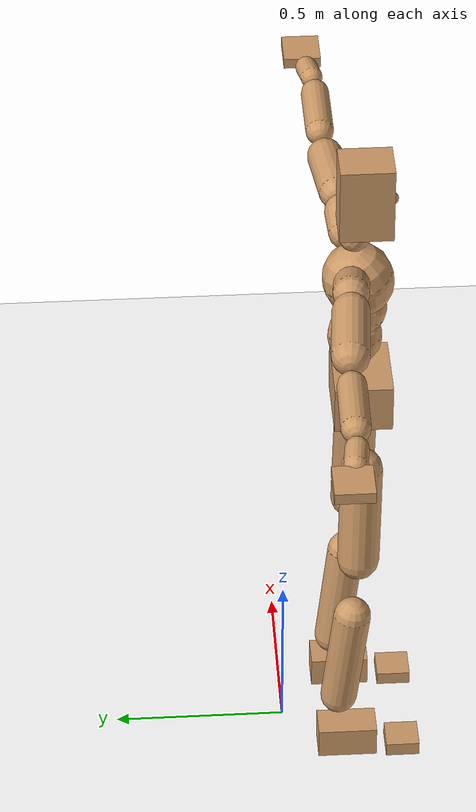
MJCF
<mujoco model="humanoid">
  <option integrator="implicitfast" />

  <visual>
    <global offwidth="1280" offheight="960" />
    <headlight active="1" ambient="0.34 0.34 0.34" diffuse="0.5 0.5 0.5" />
  </visual>

  <default>
    <joint damping="2" stiffness="2" armature="0.01" limited="true" solimplimit="0 .99 .01" />
    <geom condim="1" friction="0.7 0.005 0.0001" solimp=".99 .99 .003" solref="0.015 1" margin="0.001" rgba="0.8 0.6 .4 1" />
    <default class="smplcontact">
      <geom condim="3" friction="1. 0.005 0.0001" solref="0.015 1" solimp="0.98 0.98 0.001" priority="1" />
    </default>
    <default class="stiff_medium">
      <joint stiffness="10" />
    </default>
    <default class="stiff_medium_higher">
      <joint stiffness="50" />
    </default>
    <default class="stiff_high">
      <joint stiffness="100" />
    </default>
  </default>

  <asset>
    <texture type="skybox" builtin="gradient" rgb1="0.99 0.99 0.99" rgb2="0.608 0.828 0.892" width="100" />
    <texture builtin="flat" height="1278" mark="cross" markrgb="1 1 1" name="texgeom" random="0.01" rgb1="0.8 0.6 0.4" rgb2="0.8 0.6 0.4" type="cube" width="127" />
    <texture name="texplane" type="2d" builtin="checker" markrgb="1 1 1" rgb1="0.756 0.772 0.76" rgb2="0.6 0.6 0.6" width="100" height="100" />
    <material name="MatPlane" reflectance="0.5" texture="texplane" texrepeat="1 1" texuniform="true" />
    <material name="geom" texture="texgeom" texuniform="true" />
  </asset>

  <worldbody>
    <light name="tracking_light" pos="0 0 7" dir="0 0 -1" directional="true" cutoff="100" exponent="1" diffuse="1 1 1" specular="0.1 0.1 0.1" mode="trackcom" />
    <camera name="back" pos="0 3 2.4" xyaxes="-1 0 0 0 -1 2" mode="trackcom" />
    <camera name="side" pos="-3 0 2.4" xyaxes="0 -1 0 1 0 2" mode="trackcom" />
    <camera name="front_side" pos="-2.8 -2.8 0.8" xyaxes="0.5 -0.5 0 0.1 0.1 1" mode="trackcom" />
    <geom condim="3" name="floor" pos="0 0 0" rgba="1 1 1 1" size="100 100 .2" type="plane" material="MatPlane" />
    <body name="Pelvis" pos="-0.0018 -0.2233 1.27986" euler="90 0 0">
      <site name="Pelvis" size="0.01" />
      <freejoint name="Pelvis" />
      <geom type="box" pos="-0.0000 -0.0121 -0.0055" size="0.1069 0.0722 0.083" quat="1.0000 0.0000 0.0000 0.0000" density="3165.830099" name="Pelvis" />
      <body name="L_Hip" pos="0.0955625 -0.125675 -0.00935">
        <joint name="L_Hip_x" type="hinge" pos="0 0 0" axis="1 0 0" stiffness="17.19824030612245" range="-160.0 22.92" class="stiff_medium" damping="29.629361290924336" armature="0.022687051049198843"/>
        <joint name="L_Hip_y" type="hinge" pos="0 0 0" axis="0 1 0" stiffness="17.095561632653062" range="-70.0 70.0" class="stiff_medium" damping="16.759236135916318" armature="0.01642952725945715"/>
        <joint name="L_Hip_z" type="hinge" pos="0 0 0" axis="0 0 1" stiffness="17.10435142857143" range="-28.65 90.0" class="stiff_medium" damping="19.702841471961815" armature="0.022696093663089653"/>
        <geom type="capsule" density="2040.816327" fromto="0.0094875 -0.103125 -0.0012375 0.037675 -0.412775 -0.00495" size="0.0615" name="L_Hip" />
        <body name="L_Knee" pos="0.0471625 -0.5159 -0.0061875">
          <joint name="L_Knee_x" type="hinge" pos="0 0 0" axis="1 0 0" range="-5.16 171.89" damping="15.062760794577" armature="0.021343797365827893" stiffness="3.321907163265306"/>
          <joint name="L_Knee_y" type="hinge" pos="0 0 0" axis="0 1 0" range="-4.58 6.88" damping="12.945965232871583" armature="0.015441578364462126" stiffness="3.3917763265306125"/>
          <joint name="L_Knee_z" type="hinge" pos="0 0 0" axis="0 0 1" range="-6.88 4.58" damping="15.006918060065548" armature="0.02138423024615955" stiffness="3.2910874489795923"/>
          <geom type="capsule" density="1234.567901" fromto="-0.0037125 -0.10945 -0.0119625 -0.0149875 -0.4378 -0.048125" size="0.0541" name="L_Knee" />
          <body name="L_Ankle" pos="-0.0187 -0.54725 -0.0600875">
            <joint name="L_Ankle_x" type="hinge" pos="0 0 0" axis="1 0 0" range="-45.84 45.84" class="stiff_medium" damping="8.85984943243265" armature="0.015857944517404896" stiffness="13.750018673469388"/>
            <joint name="L_Ankle_y" type="hinge" pos="0 0 0" axis="0 1 0" range="-74.48 22.92" class="stiff_medium" damping="4.399379468505369" armature="0.015640018623433526" stiffness="13.750011836734695"/>
            <joint name="L_Ankle_z" type="hinge" pos="0 0 0" axis="0 0 1" range="-4.58 4.58" class="stiff_medium" damping="8.387836414114469" armature="0.014213292870695891" stiffness="13.75"/>
            <geom type="box" pos="0.0320375 -0.0328625 0.033275" size="0.0483 0.0464 0.085" quat="1.0000 0.0000 0.0000 0.0000" density="449.071558" name="L_Ankle" class="smplcontact" />
            <body name="L_Toe" pos="0.0363 -0.076725 0.164038">
              <joint name="L_Toe_x" type="hinge" pos="0 0 0" axis="1 0 0" range="-91.67 22.92" armature="0.013386048586154133" damping="2.7133607799894164" stiffness="2.75"/>
              <joint name="L_Toe_y" type="hinge" pos="0 0 0" axis="0 1 0" range="-4.58 4.58" armature="0.012385744586589299" damping="2.610011402776646" stiffness="2.75"/>
              <joint name="L_Toe_z" type="hinge" pos="0 0 0" axis="0 0 1" range="-4.58 4.58" armature="0.010363183740585029" damping="2.387415141386551" stiffness="2.75"/>
              <geom type="box" pos="-0.004125 0.0075625 0.0341" size="0.0478 0.02 0.0496" quat="1.0000 0.0000 0.0000 0.0000" density="423.206892" name="L_Toe" class="smplcontact" />
            </body>
          </body>
        </body>
      </body>
      <body name="R_Hip" pos="-0.0930875 -0.124437 -0.0059125">
        <joint name="R_Hip_x" type="hinge" pos="0 0 0" axis="1 0 0" stiffness="17.19824030612245" range="-160.0 22.92" class="stiff_medium" damping="29.629361290924336" armature="0.022687051049198843"/>
        <joint name="R_Hip_y" type="hinge" pos="0 0 0" axis="0 1 0" stiffness="17.095561632653062" range="-70.0 70.0" class="stiff_medium" damping="16.759236135916318" armature="0.01642952725945715"/>
        <joint name="R_Hip_z" type="hinge" pos="0 0 0" axis="0 0 1" stiffness="17.10435142857143" range="-90.0 28.65" class="stiff_medium" damping="19.702841471961815" armature="0.022696093663089653"/>
        <geom type="capsule" density="2040.816327" fromto="-0.0105875 -0.105188 -0.002475 -0.042075 -0.420887 -0.0097625" size="0.0606" name="R_Hip" />
        <body name="R_Knee" pos="-0.0526625 -0.526075 -0.0122375">
          <joint name="R_Knee_x" type="hinge" pos="0 0 0" axis="1 0 0" range="-5.16 171.89" damping="15.062760794577" armature="0.021343797365827893" stiffness="3.321907163265306"/>
          <joint name="R_Knee_y" type="hinge" pos="0 0 0" axis="0 1 0" range="-6.88 4.58" damping="12.945965232871583" armature="0.015441578364462126" stiffness="3.3917763265306125"/>
          <joint name="R_Knee_z" type="hinge" pos="0 0 0" axis="0 0 1" range="-4.58 6.88" damping="15.006918060065548" armature="0.02138423024615955" stiffness="3.2910874489795923"/>
          <geom type="capsule" density="1234.567901" fromto="0.0044 -0.109587 -0.0116875 0.017325 -0.438213 -0.046475" size="0.0541" name="R_Knee" />
          <body name="R_Ankle" pos="0.021725 -0.5478 -0.0581625">
            <joint name="R_Ankle_x" type="hinge" pos="0 0 0" axis="1 0 0" range="-45.84 45.84" class="stiff_medium" damping="8.85984943243265" armature="0.015857944517404896" stiffness="13.750018673469388"/>
            <joint name="R_Ankle_y" type="hinge" pos="0 0 0" axis="0 1 0" range="-22.92 74.48" class="stiff_medium" damping="4.399379468505369" armature="0.015640018623433526" stiffness="13.750011836734695"/>
            <joint name="R_Ankle_z" type="hinge" pos="0 0 0" axis="0 0 1" range="-4.58 4.58" class="stiff_medium" damping="8.387836414114469" armature="0.014213292870695891" stiffness="13.75"/>
            <geom type="box" pos="-0.02915 -0.023925 0.0352" size="0.0483 0.0478 0.0865" quat="1.0000 0.0000 0.0000 0.0000" density="434.700981" name="R_Ankle" class="smplcontact" />
            <body name="R_Toe" pos="-0.034925 -0.0661375 0.169538">
              <joint name="R_Toe_x" type="hinge" pos="0 0 0" axis="1 0 0" range="-91.67 22.92" armature="0.013386048586154133" damping="2.7133607799894164" stiffness="2.75"/>
              <joint name="R_Toe_y" type="hinge" pos="0 0 0" axis="0 1 0" range="-4.58 4.58" armature="0.012385744586589299" damping="2.610011402776646" stiffness="2.75"/>
              <joint name="R_Toe_z" type="hinge" pos="0 0 0" axis="0 0 1" range="-4.58 4.58" armature="0.010363183740585029" damping="2.387415141386551" stiffness="2.75"/>
              <geom type="box" pos="0.005775 0.0061875 0.0312125" size="0.0479 0.0216 0.0493" quat="1.0000 0.0000 0.0000 0.0000" density="407.384095" name="R_Toe" class="smplcontact" />
            </body>
          </body>
        </body>
      </body>
      <body name="Torso" pos="-0.0025 0.109 -0.0267">
        <joint name="Torso_x" type="hinge" pos="0 0 0" axis="1 0 0" range="-25.78 57.3" class="stiff_medium" damping="16.249002662379553" armature="0.01100082294488812" stiffness="10.667084285714289"/>
        <joint name="Torso_y" type="hinge" pos="0 0 0" axis="0 1 0" range="-57.3 57.3" class="stiff_high" damping="25.827862257678852" armature="0.015782642166796142" stiffness="105.6664755102041"/>
        <joint name="Torso_z" type="hinge" pos="0 0 0" axis="0 0 1" range="-34.38 34.38" class="stiff_high" damping="22.95942684909094" armature="0.012628565201764912" stiffness="104.35375531914897"/>
        <geom type="capsule" density="2040.816327" fromto="0.0025 0.0608 0.0005 0.003 0.0743 0.0006" size="0.0769" name="Torso" />
        <body name="Spine" pos="0.0055 0.1352 0.0011">
          <joint name="Spine_x" type="hinge" pos="0 0 0" axis="1 0 0" stiffness="10.801640204081632" range="-25.78 57.3" class="stiff_medium" damping="16.52949868968122" armature="0.011242092117287042"/>
          <joint name="Spine_y" type="hinge" pos="0 0 0" axis="0 1 0" stiffness="10.993194042553192" range="-57.3 57.3" class="stiff_high" damping="10.550939846165113" armature="0.015822621024438047"/>
          <joint name="Spine_z" type="hinge" pos="0 0 0" axis="0 0 1" stiffness="21.950184081632656" range="-34.38 34.38" class="stiff_high" damping="14.755254913518767" armature="0.013775988465595863"/>
          <geom type="capsule" density="2040.816327" fromto="0.0007 0.0238 0.0114 0.0008 0.0291 0.014" size="0.0755" name="Spine" />
          <body name="Chest" pos="0.0015 0.0529 0.0254">
            <joint name="Chest_x" type="hinge" pos="0 0 0" axis="1 0 0" stiffness="11.160686250000001" range="-25.78 57.3" class="stiff_medium" damping="16.913025635620162" armature="0.011391192649850414"/>
            <joint name="Chest_y" type="hinge" pos="0 0 0" axis="0 1 0" stiffness="12.279827826086954" range="-57.3 57.3" class="stiff_high" damping="11.15352776697087" armature="0.015828955346832544"/>
            <joint name="Chest_z" type="hinge" pos="0 0 0" axis="0 0 1" stiffness="22.066057083333334" range="-34.38 34.38" class="stiff_high" damping="15.064016907343918" armature="0.014283161773945494"/>
            <geom type="capsule" density="2040.816327" fromto="-0.0009 0.0682 -0.0173 -0.001 0.0833 -0.0212" size="0.1002" name="Chest" />
            <body name="Neck" pos="-0.0028 0.2139 -0.0429">
              <joint name="Neck_x" type="hinge" pos="0 0 0" axis="1 0 0" range="-28.65 57.3" class="stiff_medium_higher" damping="10.000000000000002" armature="0.010000000000000005" stiffness="50.0"/>
              <joint name="Neck_y" type="hinge" pos="0 0 0" axis="0 1 0" range="-40.11 40.11" class="stiff_medium_higher" damping="10.0" armature="0.01" stiffness="50.0"/>
              <joint name="Neck_z" type="hinge" pos="0 0 0" axis="0 0 1" range="-40.11 40.11" class="stiff_medium_higher" damping="9.999999999999996" armature="0.009999999999999992" stiffness="50.0"/>
              <geom type="capsule" density="1000" fromto="0.001 0.013 0.0103 0.0041 0.052 0.0411" size="0.0436" name="Neck" />
              <body name="Head" pos="0.0052 0.065 0.0513">
                <joint name="Head_x" type="hinge" pos="0 0 0" axis="1 0 0" range="-28.65 57.3" class="stiff_medium_higher" damping="2.0000000000000053" armature="0.010000000000000054" stiffness="50.0"/>
                <joint name="Head_y" type="hinge" pos="0 0 0" axis="0 1 0" range="-40.11 40.11" class="stiff_medium_higher" damping="1.9999999999999998" armature="0.009999999999999998" stiffness="50.0"/>
                <joint name="Head_z" type="hinge" pos="0 0 0" axis="0 0 1" range="-40.11 40.11" class="stiff_medium_higher" damping="2.0000000000000004" armature="0.010000000000000005" stiffness="50.0"/>
                <geom type="box" pos="-0.0042 0.0876 -0.0116" size="0.0606 0.1154 0.076" quat="1.0000 0.0000 0.0000 0.0000" density="1018.069894" name="Head" />
                <geom type="capsule" name="nose" size="0.02 0.01" pos="0 0.07 0.05" quat="1 0 0 0" mass="0" contype="0" conaffinity="0" />
              </body>
            </body>
            <body name="L_Thorax" pos="0.09456 0.14604 -0.04092">
              <joint name="L_Thorax_x" type="hinge" pos="0 0 0" axis="1 0 0" range="-10.89 4.58" class="stiff_medium_higher" damping="27.342828037145587" armature="0.01388316140528759" stiffness="67.31448112244898"/>
              <joint name="L_Thorax_y" type="hinge" pos="0 0 0" axis="0 1 0" range="-28.65 17.19" class="stiff_medium_higher" damping="29.39539222803986" armature="0.015973211475722778" stiffness="67.620175"/>
              <joint name="L_Thorax_z" type="hinge" pos="0 0 0" axis="0 0 1" range="-31.51 40.11" class="stiff_medium_higher" damping="29.396409527404238" armature="0.015975115138279122" stiffness="67.61679693877551"/>
              <geom type="capsule" density="1000" fromto="0.02184 0.00732 -0.00216 0.08736 0.02928 -0.00852" size="0.0521" name="L_Thorax" />
              <body name="L_Shoulder" pos="0.1092 0.0366 -0.01068">
                <joint name="L_Shoulder_x" type="hinge" pos="0 0 0" axis="1 0 0" range="-97.4 97.4" class="stiff_medium" damping="7.934224871342877" armature="0.013032307273704764" stiffness="13.417919999999999"/>
                <joint name="L_Shoulder_y" type="hinge" pos="0 0 0" axis="0 1 0" range="-108.86 80.21" class="stiff_medium" damping="8.787023272078152" armature="0.01588566930610925" stiffness="13.501298367346937"/>
                <joint name="L_Shoulder_z" type="hinge" pos="0 0 0" axis="0 0 1" range="-97.4 85.94" class="stiff_medium" damping="8.786069504764413" armature="0.015888008764521216" stiffness="13.496380000000002"/>
                <geom type="capsule" density="1000" fromto="0.06228 -0.00312 -0.0066 0.24924 -0.01224 -0.0264" size="0.0517" name="L_Shoulder" />
                <body name="L_Elbow" pos="0.31152 -0.01536 -0.033">
                  <joint name="L_Elbow_x" type="hinge" pos="0 0 0" axis="1 0 0" range="-17.19 4.58" damping="6.232456205291411" armature="0.011731525217588353" stiffness="2.6488293469387756"/>
                  <joint name="L_Elbow_y" type="hinge" pos="0 0 0" axis="0 1 0" range="-180.0 17.19" damping="7.156106367972159" armature="0.015461775606096717" stiffness="2.649623673469388"/>
                  <joint name="L_Elbow_z" type="hinge" pos="0 0 0" axis="0 0 1" range="-100.84 4.58" damping="7.157115854883424" armature="0.015474031127394207" stiffness="2.648272163265306"/>
                  <geom type="capsule" density="1000" fromto="0.05976 0.00216 -0.00024 0.23928 0.00864 -0.00108" size="0.0405" name="L_Elbow" />
                  <body name="L_Wrist" pos="0.29904 0.0108 -0.00144">
                    <joint name="L_Wrist_x" type="hinge" pos="0 0 0" axis="1 0 0" range="-180.0 22.92" armature="0.01147048725635295" damping="2.388555556520284" stiffness="2.4869029183673472"/>
                    <joint name="L_Wrist_y" type="hinge" pos="0 0 0" axis="0 1 0" range="-17.19 17.19" armature="0.014137841032973752" damping="2.6585613747278742" stiffness="2.4996562653061227"/>
                    <joint name="L_Wrist_z" type="hinge" pos="0 0 0" axis="0 0 1" range="-22.92 22.92" armature="0.014283798741946163" damping="2.6694984653462748" stiffness="2.4945122040816328"/>
                    <geom type="capsule" density="1000" fromto="0.02016 -0.00192 -0.0036 0.08064 -0.0078 -0.0144" size="0.0318" name="L_Wrist" class="smplcontact" />
                    <body name="L_Hand" pos="0.1008 -0.00984 -0.01788">
                      <joint name="L_Hand_x" type="hinge" pos="0 0 0" axis="1 0 0" range="-17.19 17.19" armature="0.010191691106290389" damping="2.2117892600831994" stiffness="2.4000000000000004"/>
                      <joint name="L_Hand_y" type="hinge" pos="0 0 0" axis="0 1 0" range="-51.57 51.57" armature="0.012318239464289076" damping="2.4316157062452852" stiffness="2.4000000000000004"/>
                      <joint name="L_Hand_z" type="hinge" pos="0 0 0" axis="0 0 1" range="-91.67 91.67" armature="0.01288509998431695" damping="2.4869354620641317" stiffness="2.4000000000000004"/>
                      <geom type="box" pos="0.05916 0.0012 -0.00696" size="0.0585 0.0158 0.0538" quat="1.0000 0.0000 0.0000 0.0000" density="400.552564" name="L_Hand" class="smplcontact" />
                    </body>
                  </body>
                </body>
              </body>
            </body>
            <body name="R_Thorax" pos="-0.09816 0.14256 -0.04632">
              <joint name="R_Thorax_x" type="hinge" pos="0 0 0" axis="1 0 0" range="-10.89 4.58" class="stiff_medium_higher" damping="27.342828037145587" armature="0.01388316140528759" stiffness="67.31448112244898"/>
              <joint name="R_Thorax_y" type="hinge" pos="0 0 0" axis="0 1 0" range="-17.19 28.65" class="stiff_medium_higher" damping="29.39539222803986" armature="0.015973211475722778" stiffness="67.620175"/>
              <joint name="R_Thorax_z" type="hinge" pos="0 0 0" axis="0 0 1" range="-40.11 31.51" class="stiff_medium_higher" damping="29.396409527404238" armature="0.015975115138279122" stiffness="67.61679693877551"/>
              <geom type="capsule" density="1000" fromto="-0.02304 0.0078 -0.00216 -0.09216 0.0312 -0.00876" size="0.0511" name="R_Thorax" />
              <body name="R_Shoulder" pos="-0.1152 0.03912 -0.01092">
                <joint name="R_Shoulder_x" type="hinge" pos="0 0 0" axis="1 0 0" range="-97.4 97.4" class="stiff_medium" damping="7.934224871342877" armature="0.013032307273704764" stiffness="13.417919999999999"/>
                <joint name="R_Shoulder_y" type="hinge" pos="0 0 0" axis="0 1 0" range="-80.21 108.86" class="stiff_medium" damping="8.787023272078152" armature="0.01588566930610925" stiffness="13.501298367346937"/>
                <joint name="R_Shoulder_z" type="hinge" pos="0 0 0" axis="0 0 1" range="-85.94 97.4" class="stiff_medium" damping="8.786069504764413" armature="0.015888008764521216" stiffness="13.496380000000002"/>
                <geom type="capsule" density="1000" fromto="-0.06084 -0.00324 -0.00516 -0.2436 -0.01284 -0.02052" size="0.0531" name="R_Shoulder" />
                <body name="R_Elbow" pos="-0.30444 -0.01596 -0.02568">
                  <joint name="R_Elbow_x" type="hinge" pos="0 0 0" axis="1 0 0" range="-17.19 4.58" damping="6.232456205291411" armature="0.011731525217588353" stiffness="2.6488293469387756"/>
                  <joint name="R_Elbow_y" type="hinge" pos="0 0 0" axis="0 1 0" range="-17.19 180.0" damping="7.156106367972159" armature="0.015461775606096717" stiffness="2.649623673469388"/>
                  <joint name="R_Elbow_z" type="hinge" pos="0 0 0" axis="0 0 1" range="-4.58 100.84" damping="7.157115854883424" armature="0.015474031127394207" stiffness="2.648272163265306"/>
                  <geom type="capsule" density="1000" fromto="-0.06132 0.00192 -0.00132 -0.24504 0.00744 -0.00528" size="0.0408" name="R_Elbow" />
                  <body name="R_Wrist" pos="-0.30636 0.00936 -0.00672">
                    <joint name="R_Wrist_x" type="hinge" pos="0 0 0" axis="1 0 0" range="-180.0 22.92" armature="0.01147048725635295" damping="2.388555556520284" stiffness="2.4869029183673472"/>
                    <joint name="R_Wrist_y" type="hinge" pos="0 0 0" axis="0 1 0" range="-17.19 17.19" armature="0.014137841032973752" damping="2.6585613747278742" stiffness="2.4996562653061227"/>
                    <joint name="R_Wrist_z" type="hinge" pos="0 0 0" axis="0 0 1" range="-22.92 22.92" armature="0.014283798741946163" damping="2.6694984653462748" stiffness="2.4945122040816328"/>
                    <geom type="capsule" density="1000" fromto="-0.02028 -0.00144 -0.00252 -0.08124 -0.00588 -0.00996" size="0.0326" name="R_Wrist" class="smplcontact" />
                    <body name="R_Hand" pos="-0.10152 -0.00732 -0.01236">
                      <joint name="R_Hand_x" type="hinge" pos="0 0 0" axis="1 0 0" range="-17.19 17.19" armature="0.010191691106290389" damping="2.2117892600831994" stiffness="2.4000000000000004"/>
                      <joint name="R_Hand_y" type="hinge" pos="0 0 0" axis="0 1 0" range="-51.57 51.57" armature="0.012318239464289076" damping="2.4316157062452852" stiffness="2.4000000000000004"/>
                      <joint name="R_Hand_z" type="hinge" pos="0 0 0" axis="0 0 1" range="-91.67 91.67" armature="0.01288509998431695" damping="2.4869354620641317" stiffness="2.4000000000000004"/>
                      <geom type="box" pos="-0.05544 -0.00108 -0.00948" size="0.0569 0.0164 0.0546" quat="1.0000 0.0000 0.0000 0.0000" density="403.679611" name="R_Hand" class="smplcontact" />
                    </body>
                  </body>
                </body>
              </body>
            </body>
          </body>
        </body>
      </body>
    </body>
  </worldbody>
  <actuator>
    <general name="L_Hip_x" joint="L_Hip_x" biastype="affine" gainprm="494.15714895193184" biasprm="-370.3206974542467 -309.5683255102041 -3.950581505456578" ctrllimited="true" ctrlrange="-1 1" forcerange="-619.1366510204082 619.1366510204082" />
    <general name="L_Hip_y" joint="L_Hip_y" biastype="affine" gainprm="375.9510358389407" biasprm="0.0 -307.72010938775514 -3.3518472271832636" ctrllimited="true" ctrlrange="-1 1" forcerange="-615.4402187755103 615.4402187755103" />
    <general name="L_Hip_z" joint="L_Hip_z" biastype="affine" gainprm="318.78232268102033" biasprm="164.83182045074247 -307.8783257142857 -3.9405682943923632" ctrllimited="true" ctrlrange="-1 1" forcerange="-615.7566514285714 615.7566514285714" />
    <general name="L_Knee_x" joint="L_Knee_x" biastype="affine" gainprm="461.92695293520586" biasprm="435.00186875395013 -298.9716446938775 -3.76569019864425" ctrllimited="true" ctrlrange="-1 1" forcerange="-597.943289387755 597.943289387755" />
    <general name="L_Knee_y" joint="L_Knee_y" biastype="affine" gainprm="30.528235525488515" biasprm="6.1269582642778 -305.25986938775515 -3.2364913082178957" ctrllimited="true" ctrlrange="-1 1" forcerange="-610.5197387755103 610.5197387755103" />
    <general name="L_Knee_z" joint="L_Knee_z" biastype="affine" gainprm="29.621968875582738" biasprm="-5.945072287420619 -296.1978704081633 -3.751729515016387" ctrllimited="true" ctrlrange="-1 1" forcerange="-592.3957408163266 592.3957408163266" />
    <general name="L_Ankle_x" joint="L_Ankle_x" biastype="affine" gainprm="99.00742693676564" biasprm="0.0 -123.7501680612245 -2.953283144144217" ctrllimited="true" ctrlrange="-1 1" forcerange="-247.500336122449 247.500336122449" />
    <general name="L_Ankle_y" joint="L_Ankle_y" biastype="affine" gainprm="105.18453958139726" biasprm="-55.680850727072304 -123.75010653061226 -2.932919645670246" ctrllimited="true" ctrlrange="-1 1" forcerange="-247.5002130612245 247.5002130612245" />
    <general name="L_Ankle_z" joint="L_Ankle_z" biastype="affine" gainprm="9.89208986799086" biasprm="0.0 -123.75 -2.7959454713714895" ctrllimited="true" ctrlrange="-1 1" forcerange="-247.5 247.5" />
    <general name="L_Toe_x" joint="L_Toe_x" biastype="affine" gainprm="98.99865309808496" biasprm="-59.39573610693202 -99.0 -1.0853443119957666" ctrllimited="true" ctrlrange="-1 1" forcerange="-198.0 198.0" />
    <general name="L_Toe_y" joint="L_Toe_y" biastype="affine" gainprm="7.913671894392689" biasprm="0.0 -99.0 -1.0440045611106583" ctrllimited="true" ctrlrange="-1 1" forcerange="-198.0 198.0" />
    <general name="L_Toe_z" joint="L_Toe_z" biastype="affine" gainprm="7.913671894392689" biasprm="0.0 -99.0 -0.9549660565546205" ctrllimited="true" ctrlrange="-1 1" forcerange="-198.0 198.0" />
    <general name="R_Hip_x" joint="R_Hip_x" biastype="affine" gainprm="494.15714895193184" biasprm="-370.3206974542467 -309.5683255102041 -3.950581505456578" ctrllimited="true" ctrlrange="-1 1" forcerange="-619.1366510204082 619.1366510204082" />
    <general name="R_Hip_y" joint="R_Hip_y" biastype="affine" gainprm="375.9510358389407" biasprm="0.0 -307.72010938775514 -3.3518472271832636" ctrllimited="true" ctrlrange="-1 1" forcerange="-615.4402187755103 615.4402187755103" />
    <general name="R_Hip_z" joint="R_Hip_z" biastype="affine" gainprm="318.78232268102033" biasprm="-164.83182045074247 -307.8783257142857 -3.9405682943923632" ctrllimited="true" ctrlrange="-1 1" forcerange="-615.7566514285714 615.7566514285714" />
    <general name="R_Knee_x" joint="R_Knee_x" biastype="affine" gainprm="461.92695293520586" biasprm="435.00186875395013 -298.9716446938775 -3.76569019864425" ctrllimited="true" ctrlrange="-1 1" forcerange="-597.943289387755 597.943289387755" />
    <general name="R_Knee_y" joint="R_Knee_y" biastype="affine" gainprm="30.528235525488515" biasprm="-6.1269582642778 -305.25986938775515 -3.2364913082178957" ctrllimited="true" ctrlrange="-1 1" forcerange="-610.5197387755103 610.5197387755103" />
    <general name="R_Knee_z" joint="R_Knee_z" biastype="affine" gainprm="29.621968875582738" biasprm="5.945072287420619 -296.1978704081633 -3.751729515016387" ctrllimited="true" ctrlrange="-1 1" forcerange="-592.3957408163266 592.3957408163266" />
    <general name="R_Ankle_x" joint="R_Ankle_x" biastype="affine" gainprm="99.00742693676564" biasprm="0.0 -123.7501680612245 -2.953283144144217" ctrllimited="true" ctrlrange="-1 1" forcerange="-247.500336122449 247.500336122449" />
    <general name="R_Ankle_y" joint="R_Ankle_y" biastype="affine" gainprm="105.18453958139726" biasprm="55.680850727072304 -123.75010653061226 -2.932919645670246" ctrllimited="true" ctrlrange="-1 1" forcerange="-247.5002130612245 247.5002130612245" />
    <general name="R_Ankle_z" joint="R_Ankle_z" biastype="affine" gainprm="9.89208986799086" biasprm="0.0 -123.75 -2.7959454713714895" ctrllimited="true" ctrlrange="-1 1" forcerange="-247.5 247.5" />
    <general name="R_Toe_x" joint="R_Toe_x" biastype="affine" gainprm="98.99865309808496" biasprm="-59.39573610693202 -99.0 -1.0853443119957666" ctrllimited="true" ctrlrange="-1 1" forcerange="-198.0 198.0" />
    <general name="R_Toe_y" joint="R_Toe_y" biastype="affine" gainprm="7.913671894392689" biasprm="0.0 -99.0 -1.0440045611106583" ctrllimited="true" ctrlrange="-1 1" forcerange="-198.0 198.0" />
    <general name="R_Toe_z" joint="R_Toe_z" biastype="affine" gainprm="7.913671894392689" biasprm="0.0 -99.0 -0.9549660565546205" ctrllimited="true" ctrlrange="-1 1" forcerange="-198.0 198.0" />
    <general name="Torso_x" joint="Torso_x" biastype="affine" gainprm="185.60976811664653" biasprm="70.4191127953382 -256.0100228571429 -4.333067376634547" ctrllimited="true" ctrlrange="-1 1" forcerange="-384.01503428571436 384.01503428571436" />
    <general name="Torso_y" joint="Torso_y" biastype="affine" gainprm="253.61822171989738" biasprm="0.0 -253.59954122448983 -5.165572451535771" ctrllimited="true" ctrlrange="-1 1" forcerange="-380.39931183673474 380.39931183673474" />
    <general name="Torso_z" joint="Torso_z" biastype="affine" gainprm="150.28047671343057" biasprm="0.0 -250.44901276595752 -4.591885369818188" ctrllimited="true" ctrlrange="-1 1" forcerange="-375.6735191489363 375.6735191489363" />
    <general name="Spine_x" joint="Spine_x" biastype="affine" gainprm="187.9510726510386" biasprm="71.3073881795948 -259.2393648979592 -4.407866317248325" ctrllimited="true" ctrlrange="-1 1" forcerange="-388.8590473469388 388.8590473469388" />
    <general name="Spine_y" joint="Spine_y" biastype="affine" gainprm="263.8560915968915" biasprm="0.0 -263.8366570212766 -5.275469923082556" ctrllimited="true" ctrlrange="-1 1" forcerange="-395.7549855319149 395.7549855319149" />
    <general name="Spine_z" joint="Spine_z" biastype="affine" gainprm="158.05296693189538" biasprm="0.0 -263.4022089795919 -4.918418304506256" ctrllimited="true" ctrlrange="-1 1" forcerange="-395.1033134693878 395.1033134693878" />
    <general name="Chest_x" joint="Chest_x" biastype="affine" gainprm="194.19855805015155" biasprm="73.67764263048598 -267.85647 -4.51014016949871" ctrllimited="true" ctrlrange="-1 1" forcerange="-401.78470500000003 401.78470500000003" />
    <general name="Chest_y" joint="Chest_y" biastype="affine" gainprm="294.73757700737673" biasprm="0.0 -294.71586782608694 -5.576763883485435" ctrllimited="true" ctrlrange="-1 1" forcerange="-442.0738017391304 442.0738017391304" />
    <general name="Chest_z" joint="Chest_z" biastype="affine" gainprm="158.88731399878043" biasprm="0.0 -264.792685 -5.021338969114639" ctrllimited="true" ctrlrange="-1 1" forcerange="-397.1890275 397.1890275" />
    <general name="Neck_x" joint="Neck_x" biastype="affine" gainprm="27.00198885760427" biasprm="9.000662952534757 -36.0 -0.8000000000000003" ctrllimited="true" ctrlrange="-1 1" forcerange="-72.0 72.0" />
    <general name="Neck_y" joint="Neck_y" biastype="affine" gainprm="25.20185626709732" biasprm="0.0 -36.0 -0.8" ctrllimited="true" ctrlrange="-1 1" forcerange="-72.0 72.0" />
    <general name="Neck_z" joint="Neck_z" biastype="affine" gainprm="25.20185626709732" biasprm="0.0 -36.0 -0.7999999999999997" ctrllimited="true" ctrlrange="-1 1" forcerange="-72.0 72.0" />
    <general name="Head_x" joint="Head_x" biastype="affine" gainprm="18.001325905069514" biasprm="6.000441968356505 -24.0 -0.8000000000000022" ctrllimited="true" ctrlrange="-1 1" forcerange="-48.0 48.0" />
    <general name="Head_y" joint="Head_y" biastype="affine" gainprm="16.801237511398213" biasprm="0.0 -24.0 -0.7999999999999999" ctrllimited="true" ctrlrange="-1 1" forcerange="-48.0 48.0" />
    <general name="Head_z" joint="Head_z" biastype="affine" gainprm="16.801237511398213" biasprm="0.0 -24.0 -0.8000000000000003" ctrllimited="true" ctrlrange="-1 1" forcerange="-48.0 48.0" />
    <general name="L_Thorax_x" joint="L_Thorax_x" biastype="affine" gainprm="21.810088599489532" biasprm="-8.896034845687073 -161.55475469387756 -2.187426242971647" ctrllimited="true" ctrlrange="-1 1" forcerange="-323.1095093877551 323.1095093877551" />
    <general name="L_Thorax_y" joint="L_Thorax_y" biastype="affine" gainprm="64.92014975641781" biasprm="-16.230037439104454 -162.28842 -2.3516313782431886" ctrllimited="true" ctrlrange="-1 1" forcerange="-324.57684 324.57684" />
    <general name="L_Thorax_z" joint="L_Thorax_z" biastype="affine" gainprm="101.42558571489965" biasprm="12.179000797935451 -162.28031265306123 -2.351712762192339" ctrllimited="true" ctrlrange="-1 1" forcerange="-324.56062530612246 324.56062530612246" />
    <general name="L_Shoulder_x" joint="L_Shoulder_x" biastype="affine" gainprm="109.48705143225524" biasprm="0.0 -64.406016 -2.115793299024767" ctrllimited="true" ctrlrange="-1 1" forcerange="-128.812032 128.812032" />
    <general name="L_Shoulder_y" joint="L_Shoulder_y" biastype="affine" gainprm="106.92684888169526" biasprm="-16.202751470146342 -64.80623216326529 -2.343206205887507" ctrllimited="true" ctrlrange="-1 1" forcerange="-129.61246432653058 129.61246432653058" />
    <general name="L_Shoulder_z" joint="L_Shoulder_z" biastype="affine" gainprm="103.64852686442701" biasprm="-6.478739597831004 -64.782624 -2.342951867937177" ctrllimited="true" ctrlrange="-1 1" forcerange="-129.565248 129.565248" />
    <general name="L_Elbow_x" joint="L_Elbow_x" biastype="affine" gainprm="18.115998712513008" biasprm="-10.493465492181402 -95.35785648979592 -0.9971929928466259" ctrllimited="true" ctrlrange="-1 1" forcerange="-190.71571297959184 190.71571297959184" />
    <general name="L_Elbow_y" joint="L_Elbow_y" biastype="affine" gainprm="164.14171059385552" biasprm="-135.52366703070956 -95.38645224489797 -1.1449770188755455" ctrllimited="true" ctrlrange="-1 1" forcerange="-190.77290448979593 190.77290448979593" />
    <general name="L_Elbow_z" joint="L_Elbow_z" biastype="affine" gainprm="87.70725119427513" biasprm="-80.08632138077144 -95.33779787755103 -1.1451385367813478" ctrllimited="true" ctrlrange="-1 1" forcerange="-190.67559575510205 190.67559575510205" />
    <general name="L_Wrist_x" joint="L_Wrist_x" biastype="affine" gainprm="26.423011144121567" biasprm="-20.454004487081686 -14.921417510204083 -0.9554222226081136" ctrllimited="true" ctrlrange="-1 1" forcerange="-29.842835020408167 29.842835020408167" />
    <general name="L_Wrist_y" joint="L_Wrist_y" biastype="affine" gainprm="4.499712708242443" biasprm="0.0 -14.997937591836736 -1.0634245498911497" ctrllimited="true" ctrlrange="-1 1" forcerange="-29.995875183673473 29.995875183673473" />
    <general name="L_Wrist_z" joint="L_Wrist_z" biastype="affine" gainprm="5.987270287979567" biasprm="0.0 -14.967073224489797 -1.06779938613851" ctrllimited="true" ctrlrange="-1 1" forcerange="-29.934146448979593 29.934146448979593" />
    <general name="L_Hand_x" joint="L_Hand_x" biastype="affine" gainprm="4.320318217216685" biasprm="0.0 -14.400000000000002 -0.8847157040332798" ctrllimited="true" ctrlrange="-1 1" forcerange="-28.800000000000004 28.800000000000004" />
    <general name="L_Hand_y" joint="L_Hand_y" biastype="affine" gainprm="12.960954651650052" biasprm="0.0 -14.400000000000002 -0.9726462824981141" ctrllimited="true" ctrlrange="-1 1" forcerange="-28.800000000000004 28.800000000000004" />
    <general name="L_Hand_z" joint="L_Hand_z" biastype="affine" gainprm="23.03918388436611" biasprm="0.0 -14.400000000000002 -0.9947741848256527" ctrllimited="true" ctrlrange="-1 1" forcerange="-28.800000000000004 28.800000000000004" />
    <general name="R_Thorax_x" joint="R_Thorax_x" biastype="affine" gainprm="21.810088599489532" biasprm="-8.896034845687073 -161.55475469387756 -2.187426242971647" ctrllimited="true" ctrlrange="-1 1" forcerange="-323.1095093877551 323.1095093877551" />
    <general name="R_Thorax_y" joint="R_Thorax_y" biastype="affine" gainprm="64.92014975641781" biasprm="16.230037439104443 -162.28842 -2.3516313782431886" ctrllimited="true" ctrlrange="-1 1" forcerange="-324.57684 324.57684" />
    <general name="R_Thorax_z" joint="R_Thorax_z" biastype="affine" gainprm="101.42558571489965" biasprm="-12.179000797935451 -162.28031265306123 -2.351712762192339" ctrllimited="true" ctrlrange="-1 1" forcerange="-324.56062530612246 324.56062530612246" />
    <general name="R_Shoulder_x" joint="R_Shoulder_x" biastype="affine" gainprm="109.48705143225524" biasprm="0.0 -64.406016 -2.115793299024767" ctrllimited="true" ctrlrange="-1 1" forcerange="-128.812032 128.812032" />
    <general name="R_Shoulder_y" joint="R_Shoulder_y" biastype="affine" gainprm="106.92684888169526" biasprm="16.202751470146342 -64.80623216326529 -2.343206205887507" ctrllimited="true" ctrlrange="-1 1" forcerange="-129.61246432653058 129.61246432653058" />
    <general name="R_Shoulder_z" joint="R_Shoulder_z" biastype="affine" gainprm="103.64852686442701" biasprm="6.478739597830989 -64.782624 -2.342951867937177" ctrllimited="true" ctrlrange="-1 1" forcerange="-129.565248 129.565248" />
    <general name="R_Elbow_x" joint="R_Elbow_x" biastype="affine" gainprm="18.115998712513008" biasprm="-10.493465492181402 -95.35785648979592 -0.9971929928466259" ctrllimited="true" ctrlrange="-1 1" forcerange="-190.71571297959184 190.71571297959184" />
    <general name="R_Elbow_y" joint="R_Elbow_y" biastype="affine" gainprm="164.14171059385552" biasprm="135.52366703070956 -95.38645224489797 -1.1449770188755455" ctrllimited="true" ctrlrange="-1 1" forcerange="-190.77290448979593 190.77290448979593" />
    <general name="R_Elbow_z" joint="R_Elbow_z" biastype="affine" gainprm="87.70725119427513" biasprm="80.08632138077142 -95.33779787755103 -1.1451385367813478" ctrllimited="true" ctrlrange="-1 1" forcerange="-190.67559575510205 190.67559575510205" />
    <general name="R_Wrist_x" joint="R_Wrist_x" biastype="affine" gainprm="26.423011144121567" biasprm="-20.454004487081686 -14.921417510204083 -0.9554222226081136" ctrllimited="true" ctrlrange="-1 1" forcerange="-29.842835020408167 29.842835020408167" />
    <general name="R_Wrist_y" joint="R_Wrist_y" biastype="affine" gainprm="4.499712708242443" biasprm="0.0 -14.997937591836736 -1.0634245498911497" ctrllimited="true" ctrlrange="-1 1" forcerange="-29.995875183673473 29.995875183673473" />
    <general name="R_Wrist_z" joint="R_Wrist_z" biastype="affine" gainprm="5.987270287979567" biasprm="0.0 -14.967073224489797 -1.06779938613851" ctrllimited="true" ctrlrange="-1 1" forcerange="-29.934146448979593 29.934146448979593" />
    <general name="R_Hand_x" joint="R_Hand_x" biastype="affine" gainprm="4.320318217216685" biasprm="0.0 -14.400000000000002 -0.8847157040332798" ctrllimited="true" ctrlrange="-1 1" forcerange="-28.800000000000004 28.800000000000004" />
    <general name="R_Hand_y" joint="R_Hand_y" biastype="affine" gainprm="12.960954651650052" biasprm="0.0 -14.400000000000002 -0.9726462824981141" ctrllimited="true" ctrlrange="-1 1" forcerange="-28.800000000000004 28.800000000000004" />
    <general name="R_Hand_z" joint="R_Hand_z" biastype="affine" gainprm="23.03918388436611" biasprm="0.0 -14.400000000000002 -0.9947741848256527" ctrllimited="true" ctrlrange="-1 1" forcerange="-28.800000000000004 28.800000000000004" />
  </actuator>
  <contact>
    <exclude body1="Torso" body2="Chest" />
    <exclude body1="Head" body2="Chest" />
    <exclude body1="R_Knee" body2="R_Toe" />
    <exclude body1="R_Knee" body2="L_Ankle" />
    <exclude body1="R_Knee" body2="L_Toe" />
    <exclude body1="L_Knee" body2="L_Toe" />
    <exclude body1="L_Knee" body2="R_Ankle" />
    <exclude body1="L_Knee" body2="R_Toe" />
    <exclude body1="L_Shoulder" body2="Chest" />
    <exclude body1="R_Shoulder" body2="Chest" />
  </contact>
  <sensor>
    <framelinvel name="sensor_Pelvis_framelinvel" objtype="xbody" objname="Pelvis" />
    <framelinvel name="sensor_L_Hip_framelinvel" objtype="xbody" objname="L_Hip" />
    <framelinvel name="sensor_L_Knee_framelinvel" objtype="xbody" objname="L_Knee" />
    <framelinvel name="sensor_L_Ankle_framelinvel" objtype="xbody" objname="L_Ankle" />
    <framelinvel name="sensor_L_Toe_framelinvel" objtype="xbody" objname="L_Toe" />
    <framelinvel name="sensor_R_Hip_framelinvel" objtype="xbody" objname="R_Hip" />
    <framelinvel name="sensor_R_Knee_framelinvel" objtype="xbody" objname="R_Knee" />
    <framelinvel name="sensor_R_Ankle_framelinvel" objtype="xbody" objname="R_Ankle" />
    <framelinvel name="sensor_R_Toe_framelinvel" objtype="xbody" objname="R_Toe" />
    <framelinvel name="sensor_Torso_framelinvel" objtype="xbody" objname="Torso" />
    <framelinvel name="sensor_Spine_framelinvel" objtype="xbody" objname="Spine" />
    <framelinvel name="sensor_Chest_framelinvel" objtype="xbody" objname="Chest" />
    <framelinvel name="sensor_Neck_framelinvel" objtype="xbody" objname="Neck" />
    <framelinvel name="sensor_Head_framelinvel" objtype="xbody" objname="Head" />
    <framelinvel name="sensor_L_Thorax_framelinvel" objtype="xbody" objname="L_Thorax" />
    <framelinvel name="sensor_L_Shoulder_framelinvel" objtype="xbody" objname="L_Shoulder" />
    <framelinvel name="sensor_L_Elbow_framelinvel" objtype="xbody" objname="L_Elbow" />
    <framelinvel name="sensor_L_Wrist_framelinvel" objtype="xbody" objname="L_Wrist" />
    <framelinvel name="sensor_L_Hand_framelinvel" objtype="xbody" objname="L_Hand" />
    <framelinvel name="sensor_R_Thorax_framelinvel" objtype="xbody" objname="R_Thorax" />
    <framelinvel name="sensor_R_Shoulder_framelinvel" objtype="xbody" objname="R_Shoulder" />
    <framelinvel name="sensor_R_Elbow_framelinvel" objtype="xbody" objname="R_Elbow" />
    <framelinvel name="sensor_R_Wrist_framelinvel" objtype="xbody" objname="R_Wrist" />
    <framelinvel name="sensor_R_Hand_framelinvel" objtype="xbody" objname="R_Hand" />
    <frameangvel name="sensor_Pelvis_frameangvel" objtype="xbody" objname="Pelvis" />
    <frameangvel name="sensor_L_Hip_frameangvel" objtype="xbody" objname="L_Hip" />
    <frameangvel name="sensor_L_Knee_frameangvel" objtype="xbody" objname="L_Knee" />
    <frameangvel name="sensor_L_Ankle_frameangvel" objtype="xbody" objname="L_Ankle" />
    <frameangvel name="sensor_L_Toe_frameangvel" objtype="xbody" objname="L_Toe" />
    <frameangvel name="sensor_R_Hip_frameangvel" objtype="xbody" objname="R_Hip" />
    <frameangvel name="sensor_R_Knee_frameangvel" objtype="xbody" objname="R_Knee" />
    <frameangvel name="sensor_R_Ankle_frameangvel" objtype="xbody" objname="R_Ankle" />
    <frameangvel name="sensor_R_Toe_frameangvel" objtype="xbody" objname="R_Toe" />
    <frameangvel name="sensor_Torso_frameangvel" objtype="xbody" objname="Torso" />
    <frameangvel name="sensor_Spine_frameangvel" objtype="xbody" objname="Spine" />
    <frameangvel name="sensor_Chest_frameangvel" objtype="xbody" objname="Chest" />
    <frameangvel name="sensor_Neck_frameangvel" objtype="xbody" objname="Neck" />
    <frameangvel name="sensor_Head_frameangvel" objtype="xbody" objname="Head" />
    <frameangvel name="sensor_L_Thorax_frameangvel" objtype="xbody" objname="L_Thorax" />
    <frameangvel name="sensor_L_Shoulder_frameangvel" objtype="xbody" objname="L_Shoulder" />
    <frameangvel name="sensor_L_Elbow_frameangvel" objtype="xbody" objname="L_Elbow" />
    <frameangvel name="sensor_L_Wrist_frameangvel" objtype="xbody" objname="L_Wrist" />
    <frameangvel name="sensor_L_Hand_frameangvel" objtype="xbody" objname="L_Hand" />
    <frameangvel name="sensor_R_Thorax_frameangvel" objtype="xbody" objname="R_Thorax" />
    <frameangvel name="sensor_R_Shoulder_frameangvel" objtype="xbody" objname="R_Shoulder" />
    <frameangvel name="sensor_R_Elbow_frameangvel" objtype="xbody" objname="R_Elbow" />
    <frameangvel name="sensor_R_Wrist_frameangvel" objtype="xbody" objname="R_Wrist" />
    <frameangvel name="sensor_R_Hand_frameangvel" objtype="xbody" objname="R_Hand" />
    <subtreelinvel name="Chest_subtreelinvel" body="Chest" />
    <gyro name="Pelvis_gyro" site="Pelvis" />
  </sensor>
</mujoco>
